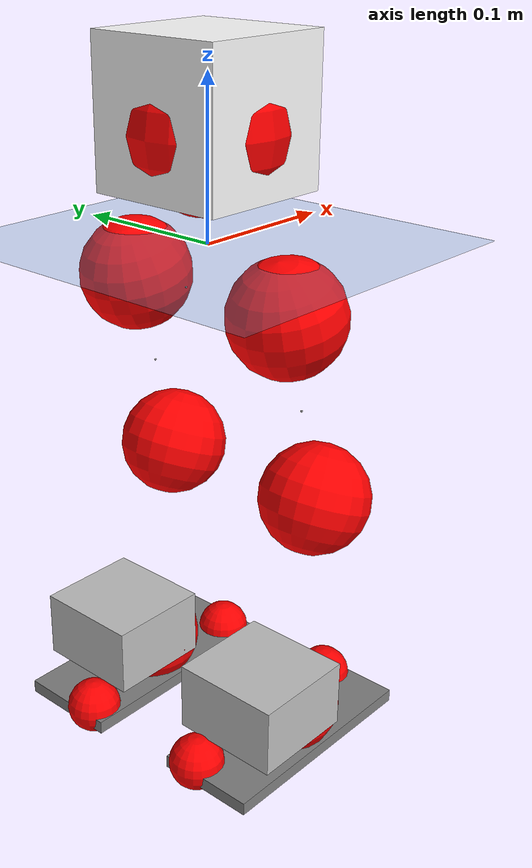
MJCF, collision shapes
<mujoco model="pi_12dof_release_v1">
  <compiler angle="radian" assetdir="assets" balanceinertia="true" inertiafromgeom="false"/>

  <option timestep="0.005" density="1.2" viscosity="2e-05"/>

  <size nkey="1"/>

  <visual>
    <quality shadowsize="8192"/>
    <map shadowclip="0.5"/>
  </visual>

  <default>
    <default class="/">
      <joint armature="0.01" damping="0.01" frictionloss="0.01"/>
      <geom contype="0" conaffinity="0" group="1" solref="-1000 -80"/>
      <site size="0.01 0.005 0.005" group="5"/>
      <general forcelimited="true" biastype="affine" gainprm="20" biasprm="0 -20 -0.5"/>
      <default class="foot">
        <geom size="0.0845 0.036 0.005" type="box" condim="6" group="4" priority="1" friction="0.9 0.2 0.2" solimp="0.015 1 0.005"/>
      </default>
      <default class="reward_collision_sphere">
        <geom group="5" rgba="1 0 0 1"/>
      </default>
    </default>
  </default>

  <asset>
    <texture type="skybox" colorspace="auto" name="//unnamed_texture_0" builtin="gradient" rgb1="0.95 0.95 0.95" rgb2="0.95 0.95 0.95" width="100" height="600"/>
    <texture type="2d" colorspace="auto" name="texplane" builtin="checker" rgb1="0.345 0.575 0.748" rgb2="0.345 0.575 0.748" markrgb="1 1 1" width="512" height="512"/>
    <material name="MatPlane" class="/" texture="texplane" texuniform="true" texrepeat="2 2" specular="0.9"/>
    <mesh name="baselink_1" class="/" file="baselink_1.STL"/>
    <mesh name="r_hip_pitch_link" class="/" file="r_hip_pitch_link.STL"/>
    <mesh name="r_hip_roll_link" class="/" file="r_hip_roll_link.STL"/>
    <mesh name="r_thigh_link" class="/" file="r_thigh_link.STL"/>
    <mesh name="r_calf_link" class="/" file="r_calf_link.STL"/>
    <mesh name="r_ankle_pitch_link" class="/" file="r_ankle_pitch_link.STL"/>
    <mesh name="r_ankle_roll_link" class="/" file="r_ankle_roll_link.STL"/>
    <mesh name="l_hip_pitch_link" class="/" file="l_hip_pitch_link.STL"/>
    <mesh name="l_hip_roll_link" class="/" file="l_hip_roll_link.STL"/>
    <mesh name="l_thigh_link" class="/" file="l_thigh_link.STL"/>
    <mesh name="l_calf_link" class="/" file="l_calf_link.STL"/>
    <mesh name="l_ankle_pitch_link" class="/" file="l_ankle_pitch_link.STL"/>
    <mesh name="l_ankle_roll_link" class="/" file="l_ankle_roll_link.STL"/>
  </asset>

  <worldbody>
    <geom name="floor" class="/" size="100 100 0.125" type="plane" group="0" material="MatPlane"/>
    <light name="toplight_shadow" class="/" pos="0 0 5" dir="0.0990148 0.0990148 -0.990148" type="directional" ambient="0.04 0.04 0.04" diffuse="0.55 0.55 0.55" specular="0.12 0.12 0.12"/>
    <light name="toplight_fill" class="/" pos="0 0 5" dir="0.0990148 0.0990148 -0.990148" type="directional" castshadow="false" ambient="0.04 0.04 0.04" diffuse="0.3 0.3 0.3" specular="0.08 0.08 0.08"/>
    <body name="trunk" pos="-9.41017e-05 -4.994e-05 0.000374651" quat="1 -1.70619e-05 -0.000102082 0.000123765">
      <inertial pos="0.00234319 0.000374766 0.0386558" quat="0.695324 0.00965051 0.00921444 0.718573" mass="1.6598" diaginertia="0.00913594 0.00291804 0.00334228"/>
      <joint name="//unnamed_joint_0" type="free"/>
      <geom name="//unnamed_geom_1" class="/" type="mesh" density="0" rgba="1 1 1 1" mesh="baselink_1"/>
      <geom name="//unnamed_geom_2" class="/" size="0.0455394 0.0455394 0.0455394" pos="0 0 0.0763233" type="box" rgba="1 1 1 1"/>
      <geom name="//unnamed_geom_3" class="reward_collision_sphere" size="0.0500933" pos="0 0 0.0667829"/>
      <site name="imu" class="/" pos="-0.00296286 0.0046631 -0.00364215" size="0.00910788"/>
      <camera name="track" class="/" pos="0 -1.59184 0" quat="0.707107 0.707107 0 0" mode="trackcom"/>
      <camera name="ego_camera" class="/" pos="0.0736802 0 0.171728" quat="-0.5 -0.5 0.5 0.5"/>
      <body name="r_hip_pitch_link" pos="-0.00026578 -0.0170562 -0.0317295" quat="0.992182 6.19042e-05 -0.124802 2.96822e-05">
        <inertial pos="0.000591671 -0.0451948 0.00106066" quat="-0.0192897 0.707808 -0.0285146 0.705565" mass="0.280606" diaginertia="9.96916e-05 3.17968e-05 6.51316e-05"/>
        <joint name="r_hip_pitch_joint" class="/" pos="0 0 0" axis="0.0101766 -0.999944 -0.00274495" range="-1.75834 1.26079" armature="0.00950656" damping="0.0144071" frictionloss="0.00917351"/>
        <geom name="//unnamed_geom_4" class="/" type="mesh" density="0" rgba="0.75294 0.75294 0.75294 1" mesh="r_hip_pitch_link"/>
        <geom name="//unnamed_geom_5" class="/" size="0.000455394 0.000455394 0.000455394" type="box" rgba="0.75294 0.75294 0.75294 1"/>
        <body name="r_hip_roll_link" pos="0.000514416 -0.044318 -0.000924705" quat="1 2.8808e-05 -0.000109713 -5.72111e-05">
          <inertial pos="-0.00120971 -9.67651e-05 -0.057936" quat="0.705631 -0.0777712 -0.0822467 0.69948" mass="0.290907" diaginertia="0.000307187 8.80227e-05 9.86603e-05"/>
          <joint name="r_hip_roll_joint" class="/" pos="0 0 0" axis="-1 0.000327119 0.000420849" range="-0.119078 0.492493" armature="0.00885743" damping="0.00337105" frictionloss="0.00869869"/>
          <geom name="//unnamed_geom_6" class="/" type="mesh" density="0" rgba="0.75294 0.75294 0.75294 1" mesh="r_hip_roll_link"/>
          <geom name="//unnamed_geom_7" class="/" size="0.000455394 0.000455394 0.000455394" type="box" rgba="0.75294 0.75294 0.75294 1"/>
          <geom name="//unnamed_geom_8" class="reward_collision_sphere" size="0.0364315"/>
          <body name="r_thigh_link" pos="0.00057542 0.000476536 -0.0656345" quat="1 0.000314366 0.000316369 -4.20669e-05">
            <inertial pos="0.000310279 0.000893812 -0.0450406" quat="0.736997 0.675896 0.0001304 -0.00016779" mass="0.0860913" diaginertia="0.000114507 2.99422e-05 4.58724e-05"/>
            <joint name="r_thigh_joint" class="/" pos="0 0 0" axis="0.00211434 -0.00138262 -0.999997" range="-0.304231 0.598103" armature="0.00924362" damping="0.0031633" frictionloss="0.00908605"/>
            <geom name="//unnamed_geom_9" class="/" type="mesh" density="0" rgba="0.75294 0.75294 0.75294 1" mesh="r_thigh_link"/>
            <geom name="//unnamed_geom_10" class="/" size="0.000455394 0.000455394 0.000455394" type="box" rgba="0.75294 0.75294 0.75294 1"/>
            <body name="r_calf_link" pos="-0.000975344 -0.000708738 -0.0666988" quat="0.947688 7.23781e-05 0.319198 8.13249e-05">
              <inertial pos="-2.01992e-05 -0.00054462 -0.0670409" quat="0.999979 -0.00350651 -0.000674881 0.00537206" mass="0.605979" diaginertia="0.0031902 0.00111993 0.000138033"/>
              <joint name="r_calf_joint" class="/" pos="0 0 0" axis="-0.00410217 -0.999986 0.00341427" range="-1.63263 0.644794" armature="0.00906432" damping="0.00813405" frictionloss="0.00920462"/>
              <geom name="//unnamed_geom_11" class="/" type="mesh" density="0" rgba="0.75294 0.75294 0.75294 1" mesh="r_calf_link"/>
              <geom name="//unnamed_geom_12" class="/" size="0.000455394 0.000455394 0.000455394" type="box" rgba="0.75294 0.75294 0.75294 1"/>
              <geom name="//unnamed_geom_13" class="reward_collision_sphere" size="0.0364315"/>
              <body name="r_ankle_pitch_link" pos="0.00237668 -0.000130294 -0.133855" quat="0.980101 1.72081e-05 -0.198499 0.000173633">
                <inertial pos="0.00499026 0.00231686 -0.000226173" quat="0.00138678 0.707305 -0.00256202 0.706902" mass="0.137299" diaginertia="0.000283612 7.31226e-05 9.71299e-05"/>
                <joint name="r_ankle_pitch_joint" class="/" pos="0 0 0" axis="0.00476065 -0.999985 -0.00287721" range="-1.28535 0.482222" armature="0.00916985" damping="0.0137474" frictionloss="0.00931147"/>
                <geom name="//unnamed_geom_14" class="/" type="mesh" density="0" rgba="0.75294 0.75294 0.75294 1" mesh="r_ankle_pitch_link"/>
                <geom name="//unnamed_geom_15" class="/" size="0.0355207 0.0364315 0.0227697" type="box" rgba="0.75294 0.75294 0.75294 1"/>
                <body name="r_ankle_roll_link" pos="0.0767521 0.00200752 -0.000737883" quat="1 0.000193378 -8.22901e-05 -1.59658e-05">
                  <inertial pos="-0.0226628 -0.000148154 -0.0124386" quat="0.560642 0.429958 0.433551 0.55933" mass="0.383718" diaginertia="0.00102646 0.000331221 0.000225076"/>
                  <joint name="r_ankle_roll_joint" class="/" pos="0 0 0" axis="-1 0.000680852 -0.000494955" range="-0.142312 0.141109" armature="0.00915486" damping="0.00606908" frictionloss="0.00984104"/>
                  <geom name="//unnamed_geom_16" class="/" type="mesh" density="0" rgba="0.75294 0.75294 0.75294 1" mesh="r_ankle_roll_link"/>
                  <geom name="//unnamed_geom_17" class="/" type="mesh" rgba="0.75294 0.75294 0.75294 1" mesh="r_ankle_roll_link"/>
                  <geom name="right_foot" class="foot" size="0.0779358 0.0332486 0.00432013" pos="-0.0501025 0 -0.0419778"/>
                  <geom name="//unnamed_geom_19" class="reward_collision_sphere" size="0.0364315" pos="-0.0491201 0 -0.0190808"/>
                  <geom name="//unnamed_geom_20" class="reward_collision_sphere" size="0.0182158" pos="0.014736 0.0159184 -0.0381617"/>
                  <geom name="//unnamed_geom_21" class="reward_collision_sphere" size="0.0182158" pos="-0.117888 0.0159184 -0.0381617"/>
                  <site name="right_foot" class="foot" pos="-0.0501025 0 -0.0419778" size="0.00910788"/>
                </body>
              </body>
            </body>
          </body>
        </body>
      </body>
      <body name="l_hip_pitch_link" pos="0.000418012 0.0184157 -0.0311198" quat="0.992215 4.2552e-05 -0.124538 2.81421e-05">
        <inertial pos="0.00187132 0.042193 0.000167617" quat="-0.0429908 0.710205 0.024456 0.702255" mass="0.287622" diaginertia="0.000116543 3.32829e-05 8.04835e-05"/>
        <joint name="l_hip_pitch_joint" class="/" pos="0 0 0" axis="-0.00189074 0.999996 0.00200697" range="-1.24399 1.73435" armature="0.0087479" damping="0.00600235" frictionloss="0.00894658"/>
        <geom name="//unnamed_geom_22" class="/" type="mesh" density="0" rgba="0.75294 0.75294 0.75294 1" mesh="l_hip_pitch_link"/>
        <geom name="//unnamed_geom_23" class="/" size="0.000455394 0.000455394 0.000455394" type="box" rgba="0.75294 0.75294 0.75294 1"/>
        <body name="l_hip_roll_link" pos="0.000151828 0.0438206 0.000381041" quat="1 0.000259146 -0.000417215 -0.000114751">
          <inertial pos="-0.00177895 0.000389446 -0.0586802" quat="0.700179 -0.0786539 -0.0790204 0.705209" mass="0.296811" diaginertia="0.000307205 9.09058e-05 0.000101693"/>
          <joint name="l_hip_roll_joint" class="/" pos="0 0 0" axis="-0.999986 0.000713717 -0.00528321" range="-0.466343 0.0931316" armature="0.00920566" damping="0.00369229" frictionloss="0.00924065"/>
          <geom name="//unnamed_geom_24" class="/" type="mesh" density="0" rgba="0.75294 0.75294 0.75294 1" mesh="l_hip_roll_link"/>
          <geom name="//unnamed_geom_25" class="/" size="0.000455394 0.000455394 0.000455394" type="box" rgba="0.75294 0.75294 0.75294 1"/>
          <geom name="//unnamed_geom_26" class="reward_collision_sphere" size="0.0364315"/>
          <body name="l_thigh_link" pos="-0.000572793 0.000126191 -0.0658358" quat="1 9.7799e-05 5.0065e-05 -0.000166447">
            <inertial pos="0.000643814 -0.000846513 -0.0452301" quat="0.675501 0.737359 1.67069e-05 -6.70476e-05" mass="0.0863747" diaginertia="0.000117621 3.13074e-05 4.79445e-05"/>
            <joint name="l_thigh_joint" class="/" pos="0 0 0" axis="2.33586e-05 -0.000147677 -1" range="-0.601667 0.287175" armature="0.0093953" damping="0.00399747" frictionloss="0.00927262"/>
            <geom name="//unnamed_geom_27" class="/" type="mesh" density="0" rgba="0.75294 0.75294 0.75294 1" mesh="l_thigh_link"/>
            <geom name="//unnamed_geom_28" class="/" size="0.000455394 0.000455394 0.000455394" type="box" rgba="0.75294 0.75294 0.75294 1"/>
            <body name="l_calf_link" pos="-0.000387994 -6.58119e-06 -0.0669555" quat="0.947617 0.000228274 0.31941 -0.000134414">
              <inertial pos="0.0008547 0.00139867 -0.0659539" quat="0.999986 0.00282205 0.00358692 -0.00284158" mass="0.620489" diaginertia="0.00321696 0.00114036 0.000138968"/>
              <joint name="l_calf_joint" class="/" pos="0 0 0" axis="-0.00143207 0.999999 0.000831024" range="-0.646218 1.67227" armature="0.00914413" damping="0.00758088" frictionloss="0.0094248"/>
              <geom name="//unnamed_geom_29" class="/" type="mesh" density="0" rgba="0.75294 0.75294 0.75294 1" mesh="l_calf_link"/>
              <geom name="//unnamed_geom_30" class="/" size="0.000455394 0.000455394 0.000455394" type="box" rgba="0.75294 0.75294 0.75294 1"/>
              <geom name="//unnamed_geom_31" class="reward_collision_sphere" size="0.0364315"/>
              <body name="l_ankle_pitch_link" pos="0.000568042 0.00100651 -0.135392" quat="0.980063 -0.000278712 -0.198689 0.000116269">
                <inertial pos="0.00492504 0.00104485 -0.00102804" quat="-0.00212849 0.706998 0.00202603 0.707209" mass="0.13012" diaginertia="0.000275896 6.94926e-05 9.23112e-05"/>
                <joint name="l_ankle_pitch_joint" class="/" pos="0 0 0" axis="0.00223155 0.999982 0.00557763" range="-0.497417 1.30151" armature="0.00903743" damping="0.000497677" frictionloss="0.00902634"/>
                <geom name="//unnamed_geom_32" class="/" type="mesh" density="0" rgba="0.75294 0.75294 0.75294 1" mesh="l_ankle_pitch_link"/>
                <geom name="//unnamed_geom_33" class="/" size="0.0355207 0.0364315 0.0227697" type="box" rgba="0.75294 0.75294 0.75294 1"/>
                <body name="l_ankle_roll_link" pos="0.0733793 -7.7041e-05 -6.24884e-06" quat="1 1.9776e-05 -2.08712e-05 -3.81123e-05">
                  <inertial pos="-0.0246047 -0.000164637 -0.0137599" quat="0.559519 0.426623 0.439555 0.558322" mass="0.392212" diaginertia="0.00105384 0.000334873 0.000231674"/>
                  <joint name="l_ankle_roll_joint" class="/" pos="0 0 0" axis="-0.999957 -0.00624584 0.00691119" range="-0.153689 0.115551" armature="0.00908332" damping="0.0103715" frictionloss="0.00832979"/>
                  <geom name="//unnamed_geom_34" class="/" type="mesh" density="0" rgba="0.75294 0.75294 0.75294 1" mesh="l_ankle_roll_link"/>
                  <geom name="//unnamed_geom_35" class="/" type="mesh" rgba="0.75294 0.75294 0.75294 1" mesh="l_ankle_roll_link"/>
                  <geom name="left_foot" class="foot" size="0.0791113 0.034626 0.00444667" pos="-0.0501025 0 -0.0419778"/>
                  <geom name="//unnamed_geom_37" class="reward_collision_sphere" size="0.0364315" pos="-0.0491201 0 -0.0190808"/>
                  <geom name="//unnamed_geom_38" class="reward_collision_sphere" size="0.0182158" pos="0.014736 -0.0159184 -0.0381617"/>
                  <geom name="//unnamed_geom_39" class="reward_collision_sphere" size="0.0182158" pos="-0.117888 -0.0159184 -0.0381617"/>
                  <site name="left_foot" class="foot" pos="-0.0501025 0 -0.0419778" size="0.00910788"/>
                </body>
              </body>
            </body>
          </body>
        </body>
      </body>
    </body>
  </worldbody>

  <contact>
    <pair class="/" geom1="floor" geom2="right_foot" name="//unnamed_contact_1"/>
    <pair class="/" geom1="floor" geom2="left_foot" name="//unnamed_contact_0"/>
  </contact>

  <actuator>
    <general name="r_hip_pitch_joint" class="/" joint="r_hip_pitch_joint" forcerange="-19.4311 19.4311" gainprm="18.6517" biasprm="0 -18.6517 -0.448916"/>
    <general name="r_hip_roll_joint" class="/" joint="r_hip_roll_joint" forcerange="-19.1041 19.1041" gainprm="18.6517" biasprm="0 -18.6517 -0.448916"/>
    <general name="r_thigh_joint" class="/" joint="r_thigh_joint" forcerange="-19.729 19.729" gainprm="18.6517" biasprm="0 -18.6517 -0.448916"/>
    <general name="r_calf_joint" class="/" joint="r_calf_joint" forcerange="-18.7332 18.7332" gainprm="18.6517" biasprm="0 -18.6517 -0.448916"/>
    <general name="r_ankle_pitch_joint" class="/" joint="r_ankle_pitch_joint" forcerange="-18.5947 18.5947" gainprm="18.6517" biasprm="0 -18.6517 -0.448916"/>
    <general name="r_ankle_roll_joint" class="/" joint="r_ankle_roll_joint" forcerange="-19.7353 19.7353" gainprm="18.6517" biasprm="0 -18.6517 -0.448916"/>
    <general name="l_hip_pitch_joint" class="/" joint="l_hip_pitch_joint" forcerange="-19.8153 19.8153" gainprm="18.6517" biasprm="0 -18.6517 -0.448916"/>
    <general name="l_hip_roll_joint" class="/" joint="l_hip_roll_joint" forcerange="-17.9488 17.9488" gainprm="18.6517" biasprm="0 -18.6517 -0.448916"/>
    <general name="l_thigh_joint" class="/" joint="l_thigh_joint" forcerange="-19.1186 19.1186" gainprm="18.6517" biasprm="0 -18.6517 -0.448916"/>
    <general name="l_calf_joint" class="/" joint="l_calf_joint" forcerange="-19.331 19.331" gainprm="18.6517" biasprm="0 -18.6517 -0.448916"/>
    <general name="l_ankle_pitch_joint" class="/" joint="l_ankle_pitch_joint" forcerange="-18.7238 18.7238" gainprm="18.6517" biasprm="0 -18.6517 -0.448916"/>
    <general name="l_ankle_roll_joint" class="/" joint="l_ankle_roll_joint" forcerange="-19.8051 19.8051" gainprm="18.6517" biasprm="0 -18.6517 -0.448916"/>
  </actuator>

  <sensor>
    <gyro site="imu" name="imu_angular_velocity"/>
    <velocimeter site="imu" name="imu_linear_velocity"/>
    <framelinvel objtype="site" objname="left_foot" name="left_foot_global_linear_velocity"/>
    <framelinvel objtype="site" objname="right_foot" name="right_foot_global_linear_velocity"/>
  </sensor>

  <keyframe>
    <key name="home" qpos="0 0 0.291 1 0 0 0 0.4 0 0 -0.8 0.4 0 -0.4 0 0 0.8 -0.4 0"/>
  </keyframe>
</mujoco>
